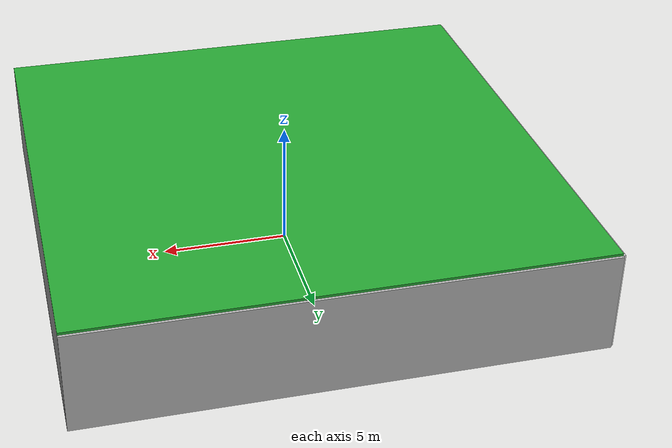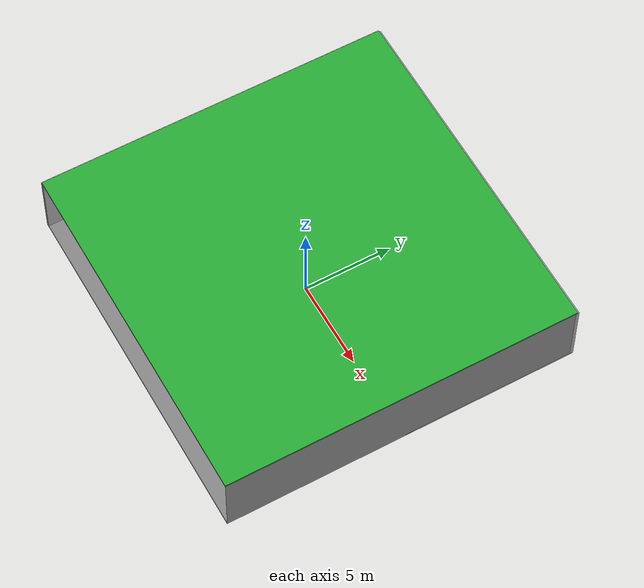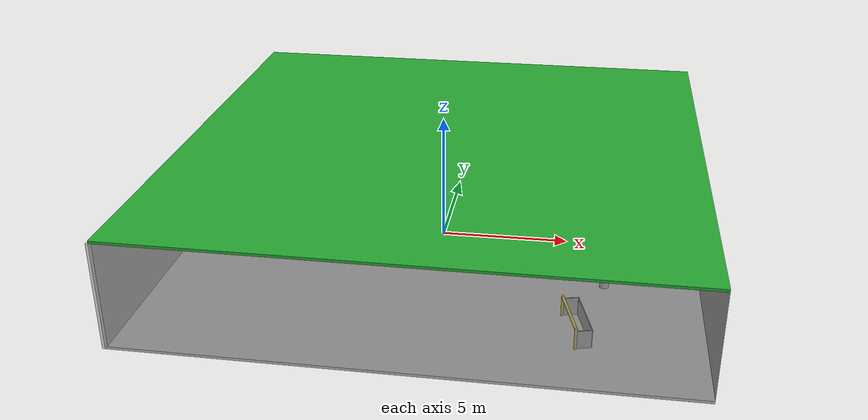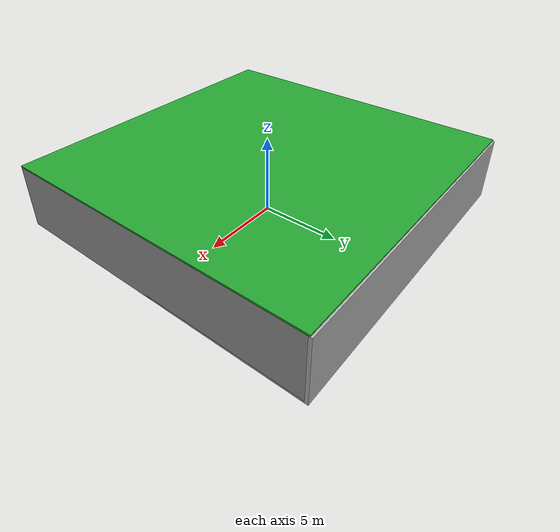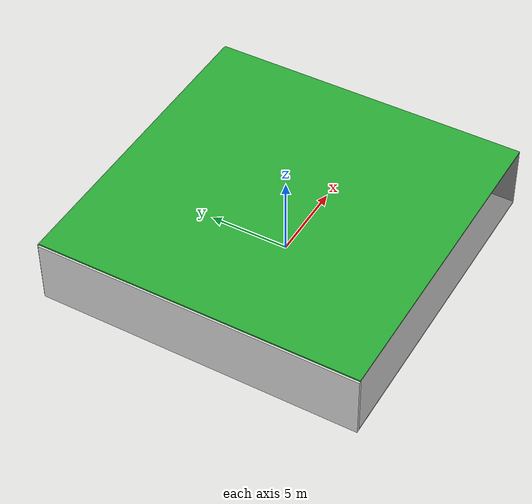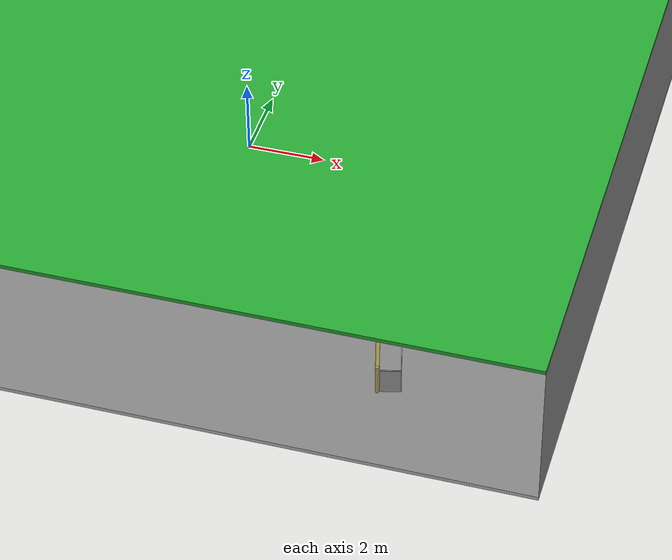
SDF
<sdf version="1.4">
 <world name="default">
  <physics type="ode">
   <max_step_size>0.001</max_step_size>
   <real_time_factor>1</real_time_factor>
   <real_time_update_rate>1000</real_time_update_rate>
   <gravity>0 0 -9.8</gravity>
  </physics>
  <scene><ambient>0.4 0.4 0.4 1</ambient><background>0.7 0.7 0.7 1</background><shadows>1</shadows></scene>
  <model name="Surrounding">
   <static>1</static>
   <link name="Ceiling">
    <collision name="Ceiling_Collision"><geometry><box><size>20 20 0.1</size></box></geometry></collision>
    <visual name="Ceiling_Visual">
     <geometry><box><size>20 20 0.1</size></box></geometry>
     <material>
      <script><uri>file://media/materials/scripts/gazebo.material</uri><name>Gazebo/GreenGlow</name></script>
     </material>
    </visual>
    <pose>0 0 4.05 0 0 0</pose>
   </link>
   <link name="Wall_South">
    <collision name="Wall_South_Collision">
     <geometry><box><size>20 0 4</size></box></geometry>
     <pose>0 0 2 0 -0 0</pose>
    </collision>
    <visual name="Wall_South_Visual">
     <pose>0 0 2 0 -0 0</pose>
     <geometry><box><size>20 0 4</size></box></geometry>
     <material>
      <script><uri>file://media/materials/scripts/gazebo.material</uri><name>Gazebo/GreyTransparent</name></script>
     </material>
    </visual>
    <velocity_decay><linear>0</linear><angular>0</angular></velocity_decay>
    <pose>0 -10 0 0 -0 0</pose>
   </link>
   <link name="Wall_East">
    <collision name="Wall_21_Collision">
     <geometry><box><size>20 0 4</size></box></geometry>
     <pose>0 0 2 0 -0 0</pose>
    </collision>
    <visual name="Wall_21_Visual">
     <pose>0 0 2 0 -0 0</pose>
     <geometry><box><size>20 0 4</size></box></geometry>
     <material>
      <script><uri>file://media/materials/scripts/gazebo.material</uri><name>Gazebo/GreyGradientSky</name></script>
     </material>
    </visual>
    <velocity_decay><linear>0</linear><angular>0</angular></velocity_decay>
    <pose>10 0 0 0 -0 1.5708</pose>
   </link>
   <link name="Wall_North">
    <collision name="Wall_22_Collision">
     <geometry><box><size>20 0.2 4</size></box></geometry>
     <pose>0 0 2 0 -0 0</pose>
    </collision>
    <visual name="Wall_22_Visual">
     <pose>0 0 2 0 -0 0</pose>
     <geometry><box><size>20 0.2 4</size></box></geometry>
     <material>
      <script><uri>file://media/materials/scripts/gazebo.material</uri><name>Gazebo/JointAnchor</name></script>
     </material>
    </visual>
    <velocity_decay><linear>0</linear><angular>0</angular></velocity_decay>
    <pose>0 10 0 0 -0 0</pose>
   </link>
   <link name="Wall_West">
    <collision name="Wall_23_Collision">
     <geometry><box><size>20 0.2 4</size></box></geometry>
     <pose>0 0 2 0 -0 0</pose>
    </collision>
    <visual name="Wall_23_Visual">
     <pose>0 0 2 0 -0 0</pose>
     <geometry><box><size>20 0.2 4</size></box></geometry>
     <material>
      <script><uri>file://media/materials/scripts/gazebo.material</uri><name>Gazebo/White</name></script>
     </material>
    </visual>
    <velocity_decay><linear>0</linear><angular>0</angular></velocity_decay>
    <pose>-10 0 0 0 0 -1.5708</pose>
   </link>
   <link name="Ground_link">
    <collision name="collision">
     <pose>0 0 .05 0 -0 0</pose>
     <geometry><box><size>20 20 0.1</size></box></geometry>
    </collision>
    <visual name="visual">
     <pose>0 0 .05 0 -0 0</pose>
     <geometry><box><size>20 20 0.1</size></box></geometry>
     <material>
      <script><uri>file://media/materials/scripts/gazebo.material</uri><name>Gazebo/JointAnchor</name></script>
     </material>
    </visual>
   </link>
   <static>1</static>
  </model>
  <spherical_coordinates>
   <surface_model>EARTH_WGS84</surface_model>
   <latitude_deg>0</latitude_deg>
   <longitude_deg>0</longitude_deg>
   <elevation>0</elevation>
   <heading_deg>0</heading_deg>
  </spherical_coordinates>
  <light name="lightball_0" type="diffuse">
   <diffuse>0.8 0.8 0.8 1</diffuse>
   <specular>0.2 0.2 0.2 1</specular>
   <attenuation>
    <range>100</range>
    <constant>0.7</constant>
    <linear>0.01</linear>
    <quadratic>0.001</quadratic>
   </attenuation>
   <direction>-0.5 0.1 -0.9</direction>
   <pose>-8.90569764819 -7.14941126023 2.70319581566 0 0 0</pose>
  </light>
  <light name="lightball_1" type="diffuse">
   <diffuse>0.8 0.8 0.8 1</diffuse>
   <specular>0.2 0.2 0.2 1</specular>
   <attenuation>
    <range>100</range>
    <constant>0.7</constant>
    <linear>0.01</linear>
    <quadratic>0.001</quadratic>
   </attenuation>
   <direction>-0.5 0.1 -0.9</direction>
   <pose>6.79186019936 8.46615013874 3.06214655794 0 0 0</pose>
  </light>
  <light name="lightball_2" type="diffuse">
   <diffuse>0.8 0.8 0.8 1</diffuse>
   <specular>0.2 0.2 0.2 1</specular>
   <attenuation>
    <range>100</range>
    <constant>0.7</constant>
    <linear>0.01</linear>
    <quadratic>0.001</quadratic>
   </attenuation>
   <direction>-0.5 0.1 -0.9</direction>
   <pose>4.12725683977 -3.05465790371 1.39794593064 0 0 0</pose>
  </light>
  <light name="lightball_3" type="diffuse">
   <diffuse>0.8 0.8 0.8 1</diffuse>
   <specular>0.2 0.2 0.2 1</specular>
   <attenuation>
    <range>100</range>
    <constant>0.7</constant>
    <linear>0.01</linear>
    <quadratic>0.001</quadratic>
   </attenuation>
   <direction>-0.5 0.1 -0.9</direction>
   <pose>5.82094963953 8.29614696596 2.47481715519 0 0 0</pose>
  </light>
  <light name="lightball_4" type="diffuse">
   <diffuse>0.8 0.8 0.8 1</diffuse>
   <specular>0.2 0.2 0.2 1</specular>
   <attenuation>
    <range>100</range>
    <constant>0.7</constant>
    <linear>0.01</linear>
    <quadratic>0.001</quadratic>
   </attenuation>
   <direction>-0.5 0.1 -0.9</direction>
   <pose>-0.379951893543 1.87139070765 3.09241014285 0 0 0</pose>
  </light>
  <include><uri>model://cabinet</uri><pose>-3.4305904819 0.732153147444 0 0 0 2.52124846442</pose></include>
  <include>
   <uri>model://robocup_3Dsim_goal</uri>
   <pose>5.34262608135 -6.74222810908 0 0 0 0.253734568723</pose>
  </include>
  <include>
   <uri>model://construction_cone</uri>
   <pose>6.52603096903 -3.51852809593 0 0 0 0.586027023555</pose>
  </include>
  <include><uri>model://table</uri><pose>8.08695738161 3.57747706671 0 0 0 1.48486081244</pose></include>
 </world>
</sdf>

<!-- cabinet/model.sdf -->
<sdf version="1.5">
  <model name="cabinet">
    <static>true</static>
    <link name="cabinet_bottom_plate">
      <inertial>
        <pose>0 0 -1 0 0 0</pose>
        <inertia>
          <ixx>2.050000</ixx>
          <ixy>0</ixy>
          <ixz>0</ixz>
          <iyy>2.050000</iyy>
          <iyz>0</iyz>
          <izz>2.050000</izz>
        </inertia>
        <mass>25.000000</mass>
      </inertial>
      <collision name="cabinet_bottom_plate_geom">
        <pose>0 0 0.010000 0 0 0</pose>
        <geometry>
          <box>
            <size>0.450000 0.450000 0.020000</size>
          </box>
        </geometry>
      </collision>
      <visual name="cabinet_bottom_plate_geom_visual">
        <pose>0 0 0.010000 0 0 0</pose>
        <geometry>
          <box>
            <size>0.450000 0.450000 0.020000</size>
          </box>
        </geometry>
        <material>
          <script>
            <uri>model://media/materials/scripts/gazebo.material</uri>
            <name>Gazebo/Wood</name>
          </script>
        </material>
      </visual>
      <collision name="cabinet_bottom_plate_geom_cabinet_back_plate">
        <pose>0.235000 0 0.510000 0 0 0</pose>
        <geometry>
          <box>
            <size>0.020000 0.450000 1.020000</size>
          </box>
        </geometry>
      </collision>
      <visual name="cabinet_bottom_plate_geom_cabinet_back_plate_visual">
        <pose>0.235000 0 0.510000 0 0 0</pose>
        <geometry>
          <box>
            <size>0.020000 0.450000 1.020000</size>
          </box>
        </geometry>
        <material>
          <script>
            <uri>model://media/materials/scripts/gazebo.material</uri>
            <name>Gazebo/Wood</name>
          </script>
        </material>
      </visual>
      <collision name="cabinet_bottom_plate_geom_cabinet_left_plate">
        <pose>0 0.235000 0.510000 0 0 0</pose>
        <geometry>
          <box>
            <size>0.450000 0.020000 1.020000</size>
          </box>
        </geometry>
      </collision>
      <visual name="cabinet_bottom_plate_geom_cabinet_left_plate_visual">
        <pose>0 0.235000 0.510000 0 0 0</pose>
        <geometry>
          <box>
            <size>0.450000 0.020000 1.020000</size>
          </box>
        </geometry>
        <material>
          <script>
            <uri>model://media/materials/scripts/gazebo.material</uri>
            <name>Gazebo/Wood</name>
          </script>
        </material>
      </visual>
      <collision name="cabinet_bottom_plate_geom_cabinet_middle_plate">
        <pose>0 0 0.510000 0 0 0</pose>
        <geometry>
          <box>
            <size>0.450000 0.450000 0.020000</size>
          </box>
        </geometry>
      </collision>
      <visual name="cabinet_bottom_plate_geom_cabinet_middle_plate_visual">
        <pose>0 0 0.510000 0 0 0</pose>
        <geometry>
          <box>
            <size>0.450000 0.450000 0.020000</size>
          </box>
        </geometry>
        <material>
          <script>
            <uri>model://media/materials/scripts/gazebo.material</uri>
            <name>Gazebo/Wood</name>
          </script>
        </material>
      </visual>
      <collision name="cabinet_bottom_plate_geom_cabinet_right_plate">
        <pose>0 -0.235000 0.510000 0 0 0</pose>
        <geometry>
          <box>
            <size>0.450000 0.020000 1.020000</size>
          </box>
        </geometry>
      </collision>
      <visual name="cabinet_bottom_plate_geom_cabinet_right_plate_visual">
        <pose>0 -0.235000 0.510000 0 0 0</pose>
        <geometry>
          <box>
            <size>0.450000 0.020000 1.020000</size>
          </box>
        </geometry>
        <material>
          <script>
            <uri>model://media/materials/scripts/gazebo.material</uri>
            <name>Gazebo/Wood</name>
          </script>
        </material>
      </visual>
      <collision name="cabinet_bottom_plate_geom_cabinet_top_plate">
        <pose>0 0 1.010000 0 0 0</pose>
        <geometry>
          <box>
            <size>0.450000 0.450000 0.020000</size>
          </box>
        </geometry>
      </collision>
      <visual name="cabinet_bottom_plate_geom_cabinet_top_plate_visual">
        <pose>0 0 1.010000 0 0 0</pose>
        <geometry>
          <box>
            <size>0.450000 0.450000 0.020000</size>
          </box>
        </geometry>
        <material>
          <script>
            <uri>model://media/materials/scripts/gazebo.material</uri>
            <name>Gazebo/Wood</name>
          </script>
        </material>
      </visual>
    </link>
  </model>
</sdf>

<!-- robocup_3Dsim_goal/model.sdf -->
<sdf version="1.5">
  <model name="robocup_3d_goal">
    <static>true</static>
    <link name="left_post">
      <pose>0 1.05 0.45 0 0 0</pose>
      <collision name="collision">
        <geometry>
          <cylinder>
            <radius>0.05</radius>
            <length>0.9</length>
          </cylinder>
        </geometry>
      </collision>
      <visual name="visual">
        <geometry>
          <cylinder>
            <radius>0.05</radius>
            <length>0.9</length>
          </cylinder>
        </geometry>
        <material>
          <script>
            <uri>file://media/materials/scripts/gazebo.material</uri>
            <name>Gazebo/ZincYellow</name>
          </script>
        </material>
      </visual>
    </link>
    <link name="left_support_horiz_lower">
      <pose>0.30 1.05 0.01 0 0 0</pose>
      <collision name="collision">
        <geometry>
          <box>
            <size>0.50 0.02 0.02</size>
          </box>
        </geometry>
      </collision>
      <visual name="visual">
        <geometry>
          <box>
            <size>0.50 0.02 0.02</size>
          </box>
        </geometry>
        <material>
          <script>
            <uri>file://media/materials/scripts/gazebo.material</uri>
            <name>Gazebo/White</name>
          </script>
        </material>
      </visual>
    </link>
    <link name="left_support_horiz_upper">
      <pose>0.30 1.05 0.79 0 0 0</pose>
      <collision name="collision">
        <geometry>
          <box>
            <size>0.50 0.02 0.02</size>
          </box>
        </geometry>
      </collision>
      <visual name="visual">
        <geometry>
          <box>
            <size>0.50 0.02 0.02</size>
          </box>
        </geometry>
        <material>
          <script>
            <uri>file://media/materials/scripts/gazebo.material</uri>
            <name>Gazebo/White</name>
          </script>
        </material>
      </visual>
    </link>
    <link name="left_support_vertical">
      <pose>0.56 1.05 0.4 0 1.5708 0</pose>
      <collision name="collision">
        <geometry>
          <box>
            <size>0.80 0.02 0.02</size>
          </box>
        </geometry>
      </collision>
      <visual name="visual">
        <geometry>
          <box>
            <size>0.80 0.02 0.02</size>
          </box>
        </geometry>
        <material>
          <script>
            <uri>file://media/materials/scripts/gazebo.material</uri>
            <name>Gazebo/White</name>
          </script>
        </material>
      </visual>
    </link>
    <link name="right_support_horiz_lower">
      <pose>0.30 -1.05 0.01 0 0 0</pose>
      <collision name="collision">
        <geometry>
          <box>
            <size>0.50 0.02 0.02</size>
          </box>
        </geometry>
      </collision>
      <visual name="visual">
        <geometry>
          <box>
            <size>0.50 0.02 0.02</size>
          </box>
        </geometry>
        <material>
          <script>
            <uri>file://media/materials/scripts/gazebo.material</uri>
            <name>Gazebo/White</name>
          </script>
        </material>
      </visual>
    </link>
    <link name="right_support_horiz_upper">
      <pose>0.30 -1.05 0.79 0 0 0</pose>
      <collision name="collision">
        <geometry>
          <box>
            <size>0.50 0.02 0.02</size>
          </box>
        </geometry>
      </collision>
      <visual name="visual">
        <geometry>
          <box>
            <size>0.50 0.02 0.02</size>
          </box>
        </geometry>
        <material>
          <script>
            <uri>file://media/materials/scripts/gazebo.material</uri>
            <name>Gazebo/White</name>
          </script>
        </material>
      </visual>
    </link>
    <link name="right_support_vertical">
      <pose>0.56 -1.05 0.4 0 1.5708 0</pose>
      <collision name="collision">
        <geometry>
          <box>
            <size>0.80 0.02 0.02</size>
          </box>
        </geometry>
      </collision>
      <visual name="visual">
        <geometry>
          <box>
            <size>0.80 0.02 0.02</size>
          </box>
        </geometry>
        <material>
          <script>
            <uri>file://media/materials/scripts/gazebo.material</uri>
            <name>Gazebo/White</name>
          </script>
        </material>
      </visual>
    </link>
    <link name="center_support_horiz_lower">
      <pose>0.56 0 0.01 0 1.5708 0</pose>
      <collision name="collision">
        <geometry>
          <box>
            <size>0.02 2.08 0.02</size>
          </box>
        </geometry>
      </collision>
      <visual name="visual">
        <geometry>
          <box>
            <size>0.02 2.08 0.02</size>
          </box>
        </geometry>
        <material>
          <script>
            <uri>file://media/materials/scripts/gazebo.material</uri>
            <name>Gazebo/White</name>
          </script>
        </material>
      </visual>
    </link>
    <link name="center_support_horiz_upper">
      <pose>0.56 0 0.79 0 1.5708 0</pose>
      <collision name="collision">
        <geometry>
          <box>
            <size>0.02 2.08 0.02</size>
          </box>
        </geometry>
      </collision>
      <visual name="visual">
        <geometry>
          <box>
            <size>0.02 2.08 0.02</size>
          </box>
        </geometry>
        <material>
          <script>
            <uri>file://media/materials/scripts/gazebo.material</uri>
            <name>Gazebo/White</name>
          </script>
        </material>
      </visual>
    </link>
    <link name="right_post">
      <pose>0 -1.05 0.45 0 0 0</pose>
      <collision name="collision">
        <geometry>
          <cylinder>
            <radius>0.05</radius>
            <length>0.9</length>
          </cylinder>
        </geometry>
      </collision>
      <visual name="visual">
        <geometry>
          <cylinder>
            <radius>0.05</radius>
            <length>0.9</length>
          </cylinder>
        </geometry>
        <material>
          <script>
            <uri>file://media/materials/scripts/gazebo.material</uri>
            <name>Gazebo/ZincYellow</name>
          </script>
        </material>
      </visual>
    </link>
    <link name="crossbar">
      <pose>0 0 0.85 1.57 1.57 0</pose>
      <collision name="collision">
        <geometry>
          <cylinder>
            <radius>0.05</radius>
            <length>2.0</length>
          </cylinder>
        </geometry>
      </collision>
      <visual name="visual">
        <geometry>
          <cylinder>
            <radius>0.05</radius>
            <length>2.0</length>
          </cylinder>
        </geometry>
        <material>
          <script>
            <uri>file://media/materials/scripts/gazebo.material</uri>
            <name>Gazebo/ZincYellow</name>
          </script>
        </material>
      </visual>
    </link>
    <link name="center_net">
      <pose>0.56 0 0.40 0 0 0</pose>
      <collision name="collision">
        <geometry>
          <box>
            <size>0.01 2.1 0.80</size>
          </box>
        </geometry>
      </collision>
      <visual name="visual">
        <geometry>
          <box>
            <size>0.01 2.1 0.80</size>
          </box>
        </geometry>
        <material>
          <script>
            <uri>model://../model_source/models/robocup09_spl_field/materials/scripts/</uri>
            <uri>model://../model_source/models/robocup09_spl_field/materials/textures/</uri>
            <name>RoboCup/Net</name>
          </script>
        </material>
      </visual>
    </link>
    <link name="left_net">
      <pose>0.30 1.05 0.40 0 0 0</pose>
      <collision name="collision">
        <geometry>
          <box>
            <size>0.50 0.01 0.76</size>
          </box>
        </geometry>
      </collision>
      <visual name="visual">
        <geometry>
          <box>
            <size>0.50 0.01 0.76</size>
          </box>
        </geometry>
        <material>
          <script>
            <uri>model://../model_source/models/robocup09_spl_field/materials/scripts/</uri>
            <uri>model://../model_source/models/robocup09_spl_field/materials/textures/</uri>
            <name>RoboCup/Net</name>
          </script>
        </material>
      </visual>
    </link>
    <link name="right_net">
      <pose>0.30 -1.05 0.40 0 0 0</pose>
      <collision name="collision">
        <geometry>
          <box>
            <size>0.50 0.01 0.76</size>
          </box>
        </geometry>
      </collision>
      <visual name="visual">
        <geometry>
          <box>
            <size>0.50 0.01 0.76</size>
          </box>
        </geometry>
        <material>
          <script>
            <uri>model://../model_source/models/robocup09_spl_field/materials/scripts/</uri>
            <uri>model://../model_source/models/robocup09_spl_field/materials/textures/</uri>
            <name>RoboCup/Net</name>
          </script>
        </material>
      </visual>
    </link>
  </model>
</sdf>

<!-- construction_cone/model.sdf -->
<sdf version="1.5">
  <model name="Construction Cone">
    <link name="link">
      <collision name="collision">
        <geometry>
          <mesh>
            <scale>10 10 10</scale>
            <uri>file://isr-testbed/construction_cone/meshes/construction_cone.dae</uri>
          </mesh>
        </geometry>
      </collision>
      <visual name="visual">
        <geometry>
          <mesh>
            <scale>10 10 10</scale>
            <uri>file://isr-testbed/construction_cone/meshes/construction_cone.dae</uri>
          </mesh>
        </geometry>
      </visual>
    </link>
  </model>
</sdf>

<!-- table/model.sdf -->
<sdf version="1.5">
  <model name="table">
    <static>true</static>
    <link name="link">
      <collision name="surface">
        <pose>0 0 1.0 0 0 0</pose>
        <geometry>
          <box>
            <size>1.5 0.8 0.03</size>
          </box>
        </geometry>
        <surface>
          <friction>
            <ode>
              <mu>0.6</mu>
              <mu2>0.6</mu2>
            </ode>
          </friction>
        </surface>
      </collision>
      <visual name="visual1">
        <pose>0 0 1.0 0 0 0</pose>
        <geometry>
          <box>
            <size>1.5 0.8 0.03</size>
          </box>
        </geometry>
        <material>
          <script>
            <uri>model://media/materials/scripts/gazebo.material</uri>
            <name>Gazebo/Wood</name>
          </script>
        </material>
      </visual>
      <collision name="front_left_leg">
        <pose>0.68 0.38 0.5 0 0 0</pose>
        <geometry>
          <cylinder>
            <radius>0.02</radius>
            <length>1.0</length>
          </cylinder>
        </geometry>
      </collision>
      <visual name="front_left_leg">
        <pose>0.68 0.38 0.5 0 0 0</pose>
        <geometry>
          <cylinder>
            <radius>0.02</radius>
            <length>1.0</length>
          </cylinder>
        </geometry>
        <material>
          <script>
            <uri>model://media/materials/scripts/gazebo.material</uri>
            <name>Gazebo/Grey</name>
          </script>
        </material>
      </visual>
      <collision name="front_right_leg">
        <pose>0.68 -0.38 0.5 0 0 0</pose>
        <geometry>
          <cylinder>
            <radius>0.02</radius>
            <length>1.0</length>
          </cylinder>
        </geometry>
      </collision>
      <visual name="front_right_leg">
        <pose>0.68 -0.38 0.5 0 0 0</pose>
        <geometry>
          <cylinder>
            <radius>0.02</radius>
            <length>1.0</length>
          </cylinder>
        </geometry>
        <material>
          <script>
            <uri>model://media/materials/scripts/gazebo.material</uri>
            <name>Gazebo/Grey</name>
          </script>
        </material>
      </visual>
      <collision name="back_right_leg">
        <pose>-0.68 -0.38 0.5 0 0 0</pose>
        <geometry>
          <cylinder>
            <radius>0.02</radius>
            <length>1.0</length>
          </cylinder>
        </geometry>
      </collision>
      <visual name="back_right_leg">
        <pose>-0.68 -0.38 0.5 0 0 0</pose>
        <geometry>
          <cylinder>
            <radius>0.02</radius>
            <length>1.0</length>
          </cylinder>
        </geometry>
        <material>
          <script>
            <uri>model://media/materials/scripts/gazebo.material</uri>
            <name>Gazebo/Grey</name>
          </script>
        </material>
      </visual>
      <collision name="back_left_leg">
        <pose>-0.68 0.38 0.5 0 0 0</pose>
        <geometry>
          <cylinder>
            <radius>0.02</radius>
            <length>1.0</length>
          </cylinder>
        </geometry>
      </collision>
      <visual name="back_left_leg">
        <pose>-0.68 0.38 0.5 0 0 0</pose>
        <geometry>
          <cylinder>
            <radius>0.02</radius>
            <length>1.0</length>
          </cylinder>
        </geometry>
        <material>
          <script>
            <uri>model://media/materials/scripts/gazebo.material</uri>
            <name>Gazebo/Grey</name>
          </script>
        </material>
      </visual>
    </link>
  </model>
</sdf>
